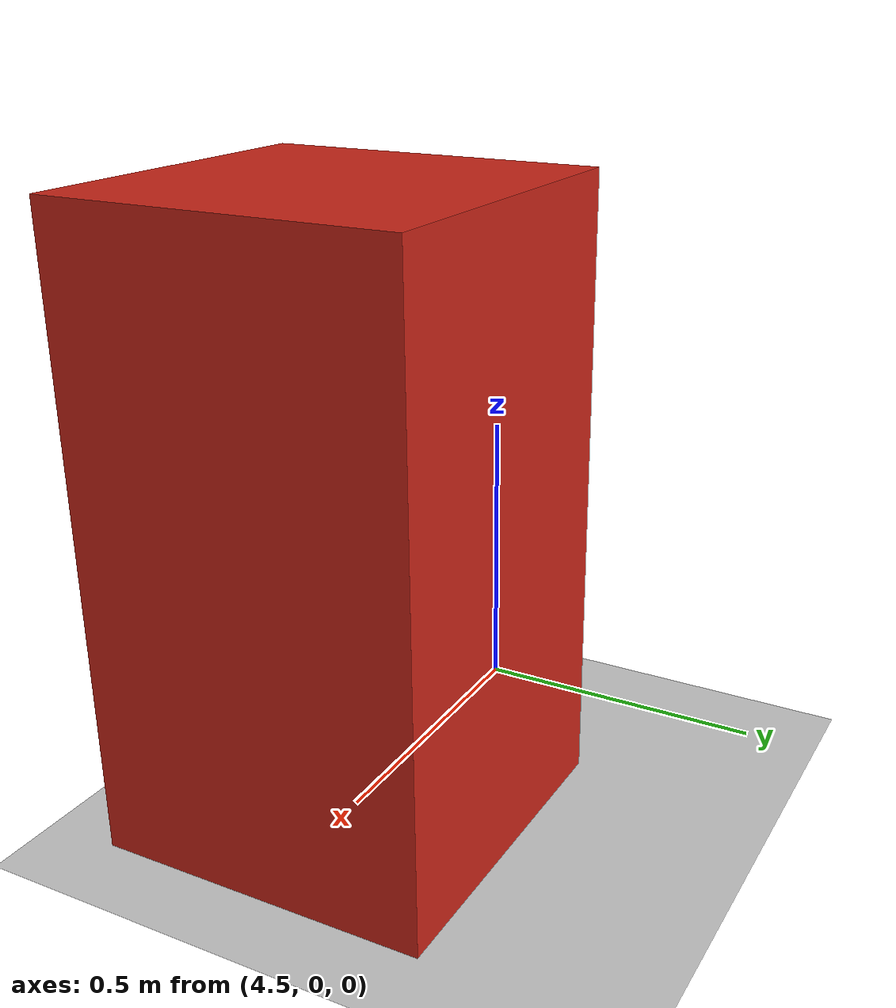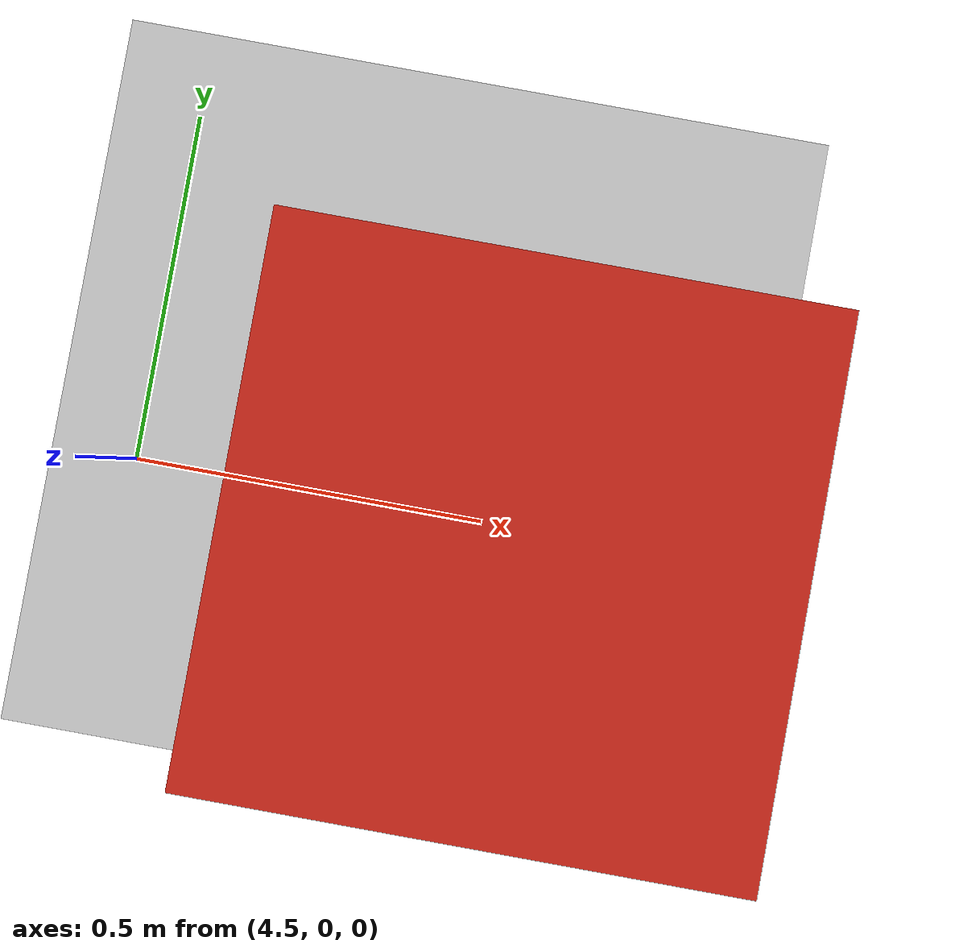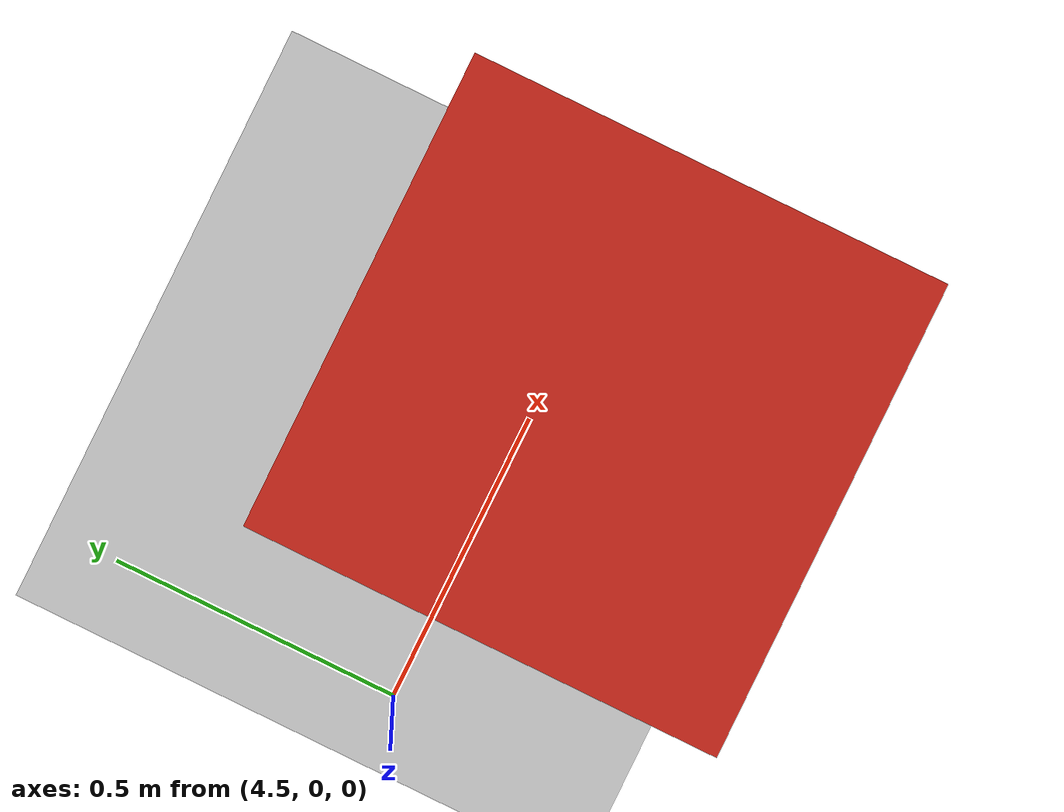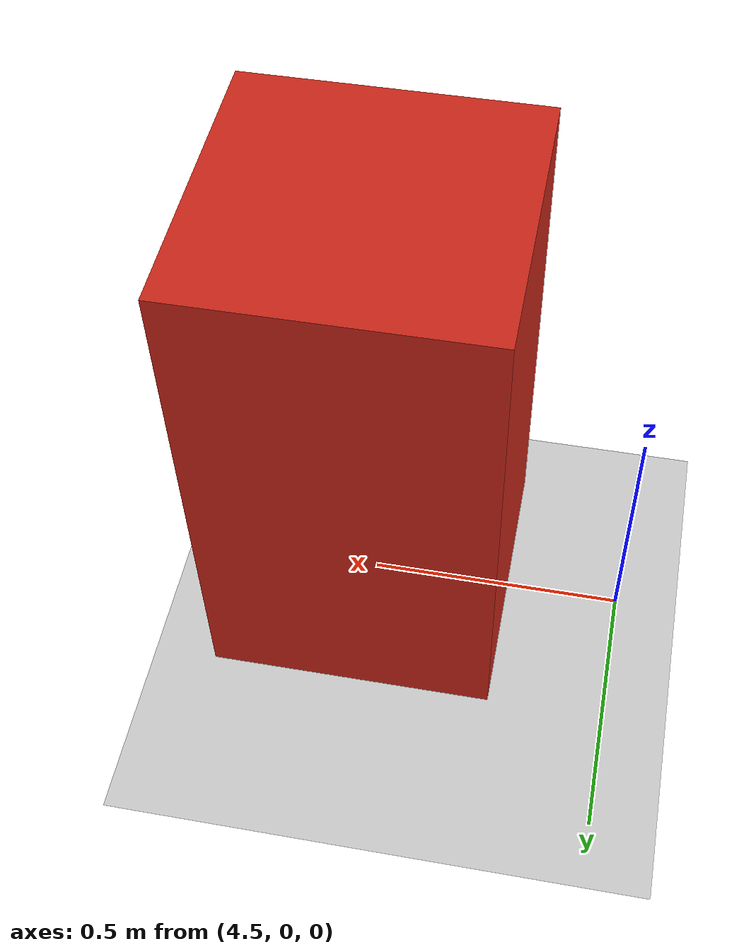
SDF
<?xml version="1.0"?>
<sdf version="1.6"><world name="head_on"><physics name="default_physics" type="ode"><max_step_size>0.001</max_step_size><real_time_update_rate>1000</real_time_update_rate></physics><plugin name="gazebo_ros_state" filename="libgazebo_ros_state.so"><update_rate>50</update_rate></plugin><include><uri>model://ground_plane</uri></include><include><uri>model://sun</uri></include><include><name>obstacle_head_on_1</name><uri>model://r680_obstacle_box</uri><pose>5 0 0.5 0 0 0</pose></include></world></sdf>

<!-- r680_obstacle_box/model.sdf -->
<sdf version="1.6"><model name="r680_obstacle_box"><static>false</static><allow_auto_disable>false</allow_auto_disable><link name="body"><gravity>false</gravity><inertial><mass>20</mass><inertia><ixx>0.8</ixx><iyy>0.8</iyy><izz>0.8</izz></inertia></inertial><collision name="collision"><geometry><box><size>0.55 0.55 1.0</size></box></geometry></collision><visual name="visual"><geometry><box><size>0.55 0.55 1.0</size></box></geometry><material><ambient>0.8 0.15 0.1 1</ambient><diffuse>0.8 0.15 0.1 1</diffuse></material></visual></link></model></sdf>
